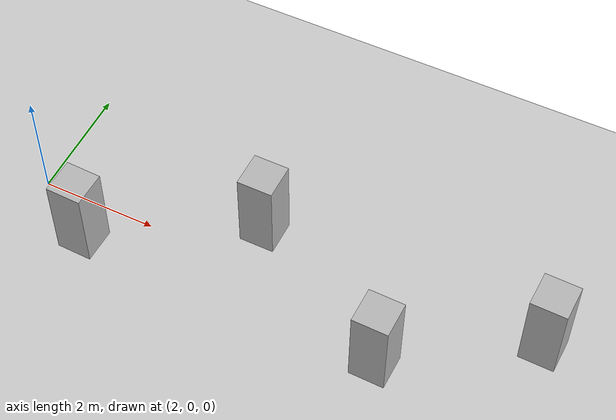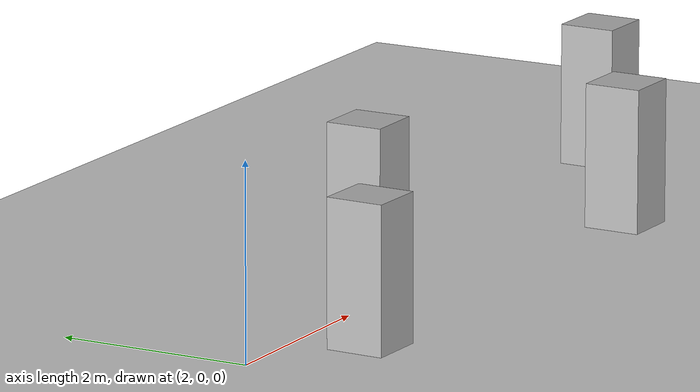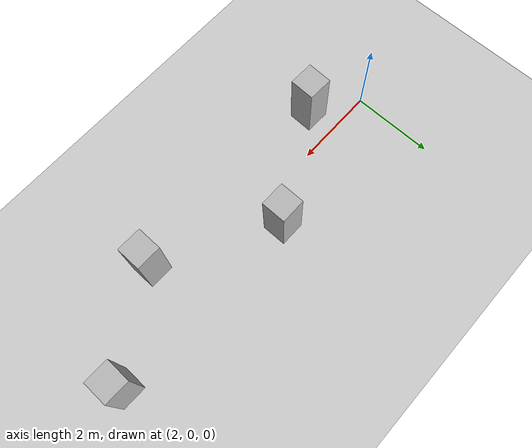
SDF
<?xml version="1.0"?>
<sdf version="1.6">
  <world name="v2-04c-r-static-s4503">
    <gravity>0 0 -9.81</gravity>
    <physics name="v2_deterministic" type="ode">
      <max_step_size>0.002</max_step_size>
      <real_time_update_rate>500</real_time_update_rate>
    </physics>
    <include>
      <uri>model://sun</uri>
    </include>
    <include>
      <uri>model://ground_plane</uri>
    </include>
    <model name="r-pillar-1">
      <static>true</static>
      <pose>3.144213071 -0.706910694 0.750000000 0 0 -0.029675451</pose>
      <link name="link">
        <collision name="collision">
          <geometry>
            <box>
              <size>0.600000 0.600000 1.500000</size>
            </box>
          </geometry>
        </collision>
        <visual name="visual">
          <geometry>
            <box>
              <size>0.600000 0.600000 1.500000</size>
            </box>
          </geometry>
        </visual>
      </link>
    </model>
    <model name="r-pillar-2">
      <static>true</static>
      <pose>5.721959433 0.737366626 0.750000000 0 0 -0.001792786</pose>
      <link name="link">
        <collision name="collision">
          <geometry>
            <box>
              <size>0.600000 0.600000 1.500000</size>
            </box>
          </geometry>
        </collision>
        <visual name="visual">
          <geometry>
            <box>
              <size>0.600000 0.600000 1.500000</size>
            </box>
          </geometry>
        </visual>
      </link>
    </model>
    <model name="r-pillar-3">
      <static>true</static>
      <pose>8.392689095 -0.771036841 0.750000000 0 0 -0.016833004</pose>
      <link name="link">
        <collision name="collision">
          <geometry>
            <box>
              <size>0.600000 0.600000 1.500000</size>
            </box>
          </geometry>
        </collision>
        <visual name="visual">
          <geometry>
            <box>
              <size>0.600000 0.600000 1.500000</size>
            </box>
          </geometry>
        </visual>
      </link>
    </model>
    <model name="r-pillar-4">
      <static>true</static>
      <pose>10.613941809 0.653739244 0.750000000 0 0 -0.020121726</pose>
      <link name="link">
        <collision name="collision">
          <geometry>
            <box>
              <size>0.600000 0.600000 1.500000</size>
            </box>
          </geometry>
        </collision>
        <visual name="visual">
          <geometry>
            <box>
              <size>0.600000 0.600000 1.500000</size>
            </box>
          </geometry>
        </visual>
      </link>
    </model>
  </world>
</sdf>
